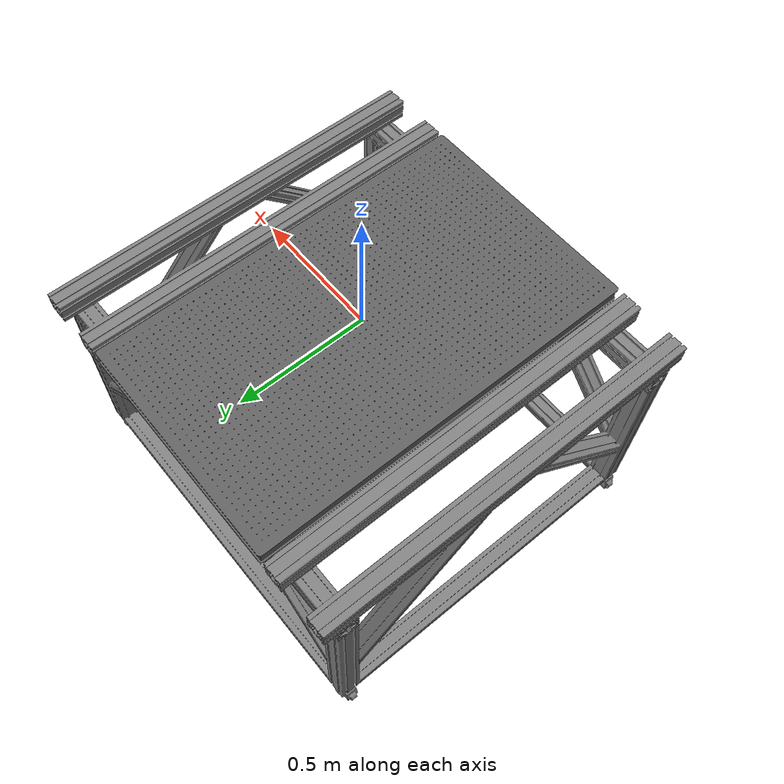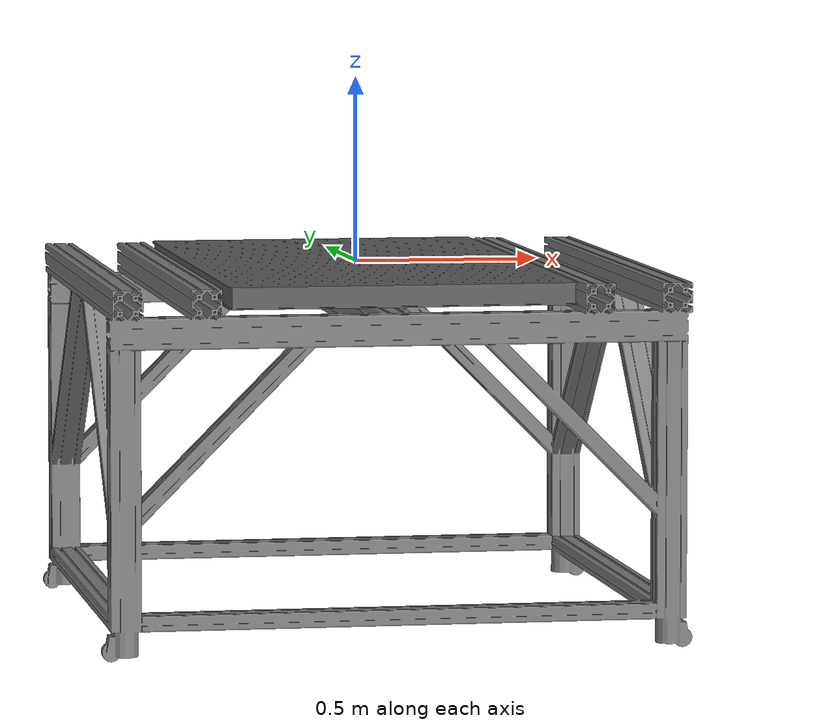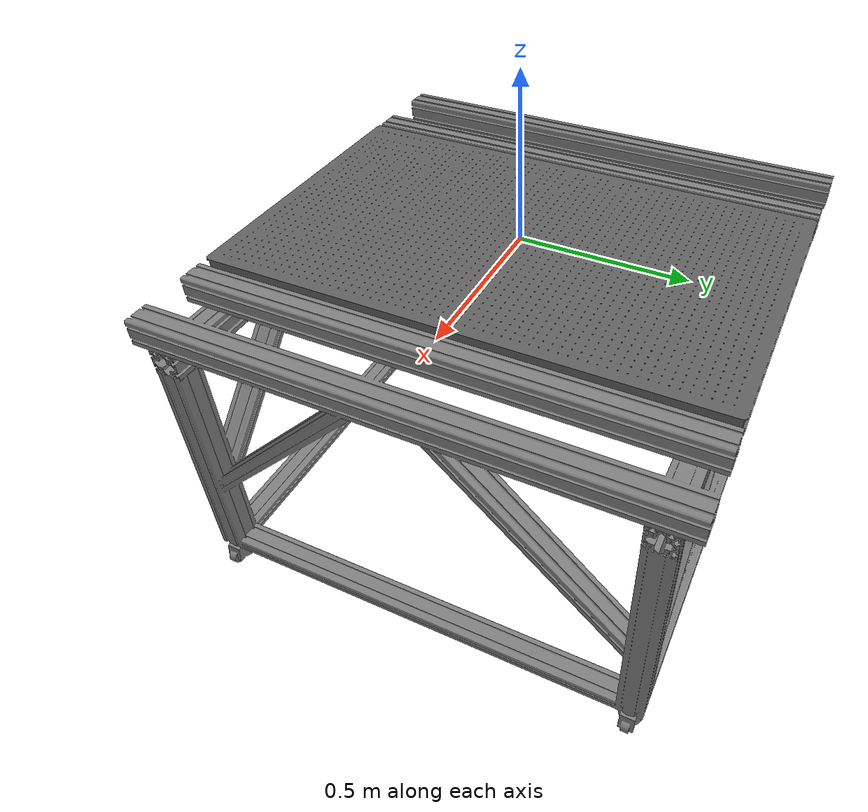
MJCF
<mujoco model="quad_table">
  <default>
    <default class="visual">
      <geom group="2" type="mesh" contype="0" conaffinity="0"/>
    </default>
    <default class="collision">
      <geom group="3" type="mesh"/>
    </default>
  </default>
  <asset>
    <material name="mat0" specular="0.14262" shininess="1.0" rgba="0.50133 0.50133 0.50133 1.0"/>
    <material name="mat3" specular="0.12423" shininess="0.25" rgba="0.37575 0.37575 0.37575 1.0"/>
    <mesh name="quad_table_0" file="quad_table_0.obj"/>
    <mesh name="quad_table_3" file="quad_table_3.obj"/>
  </asset>
  <worldbody>
    <body name="quad_table">
      <body euler="90 0 0">
        <!-- table top -->
        <geom mesh="quad_table_0" material="mat3" class="visual"/>

        <!-- table frame -->
        <geom mesh="quad_table_3" material="mat0" class="visual"/>
        <geom mesh="quad_table_0" class="collision"/>
        <geom mesh="quad_table_3" class="collision"/>
      </body>
    </body>
  </worldbody>
</mujoco>
